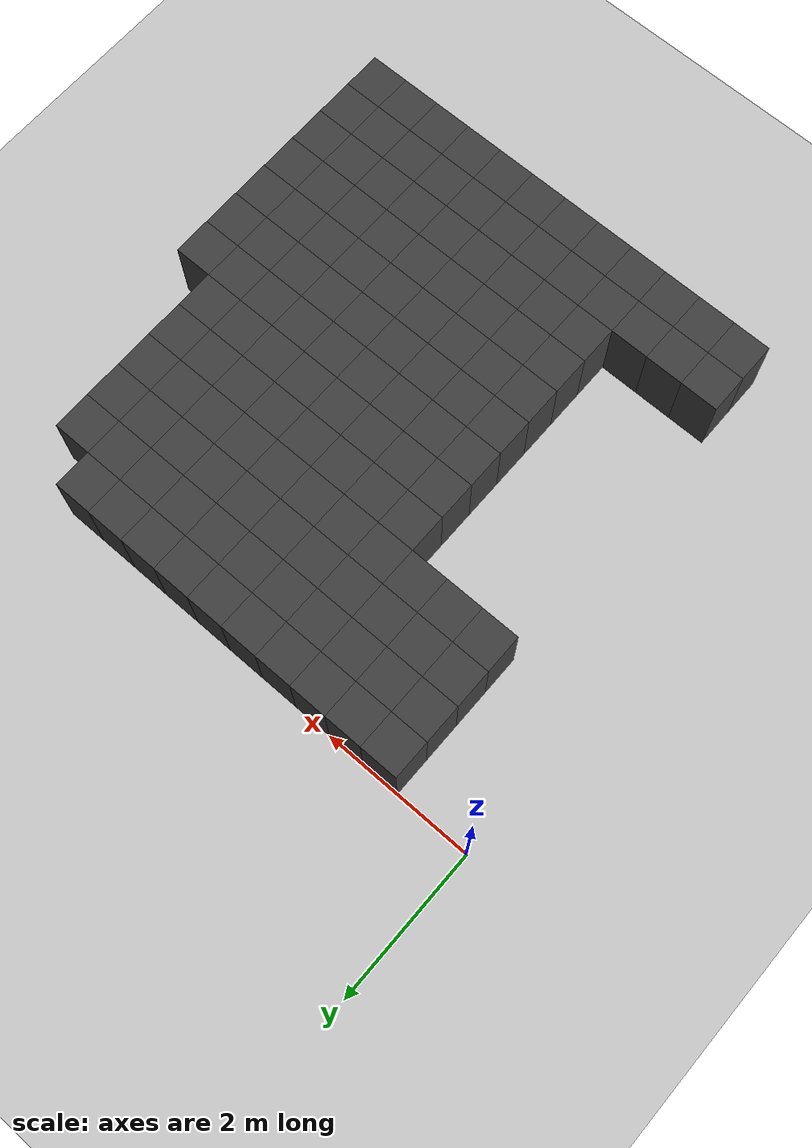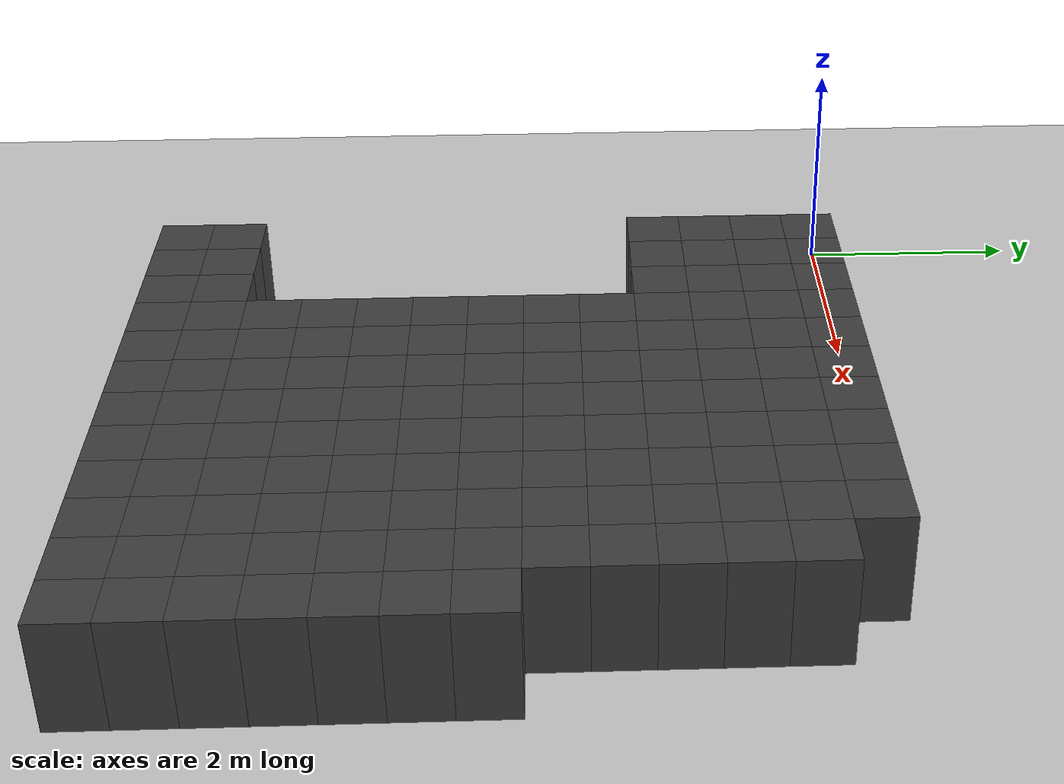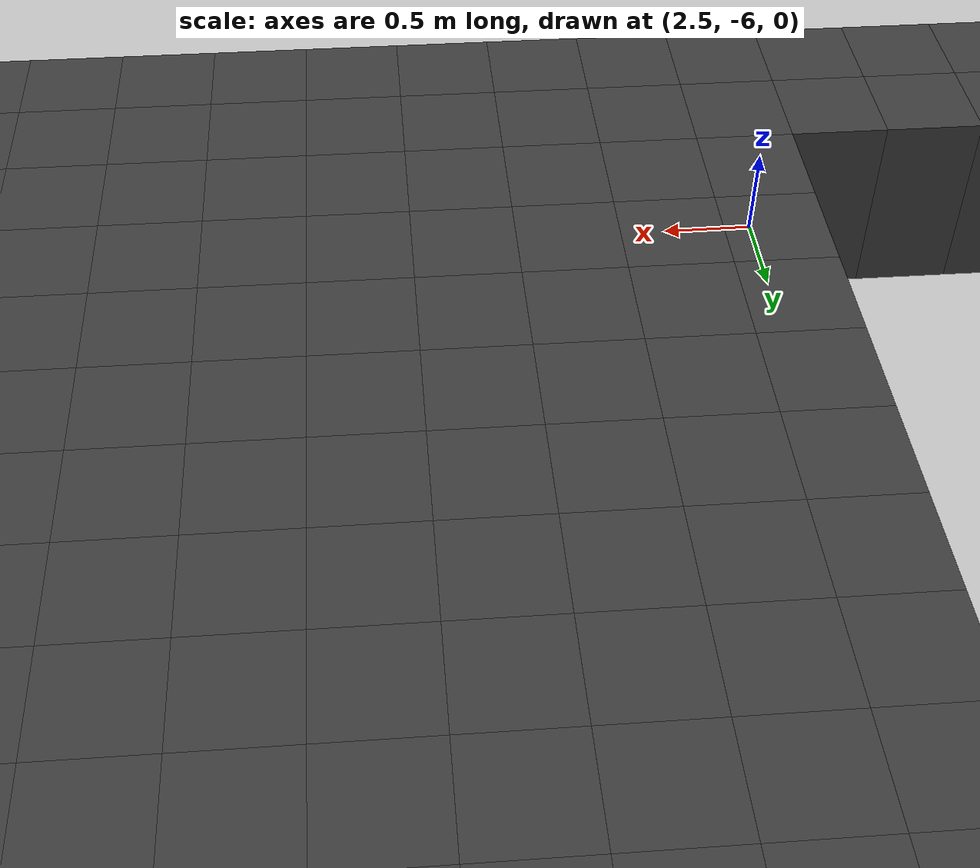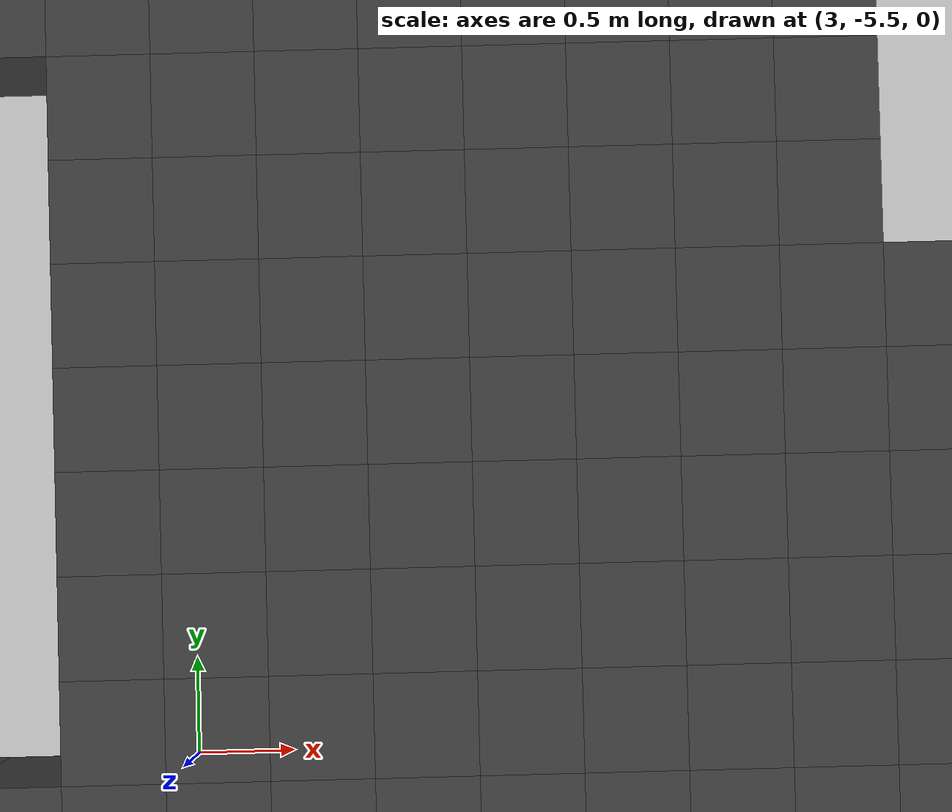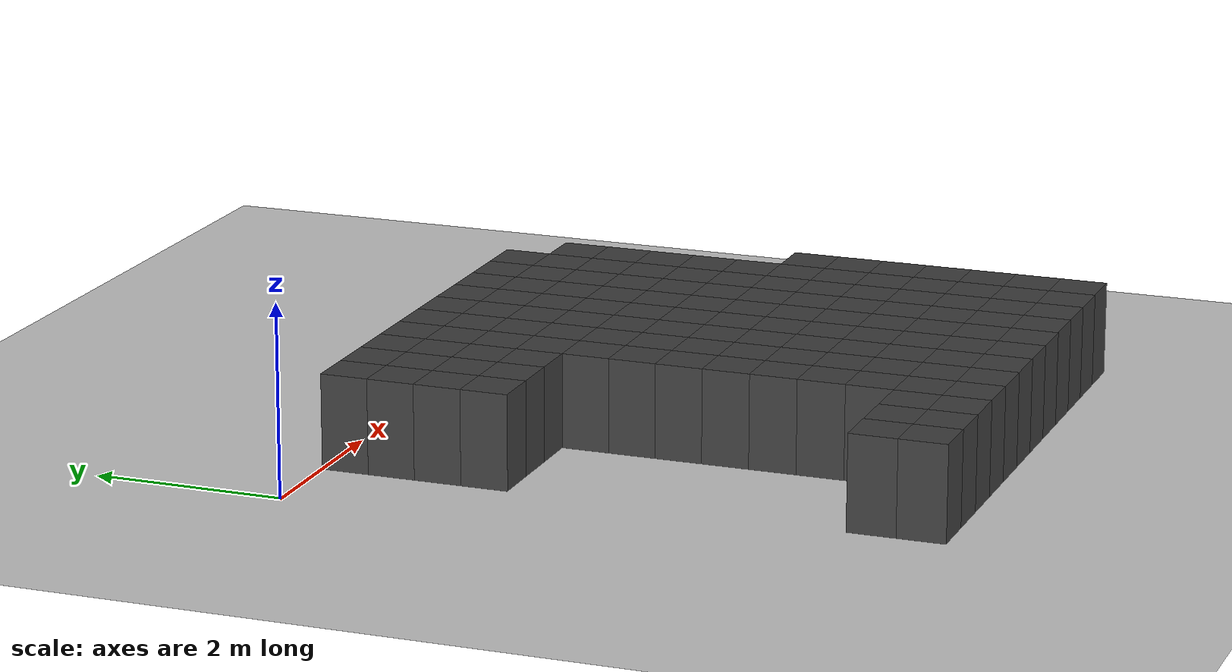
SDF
<sdf version="1.7">
 <world name="map_12356">
  <model name="ground_plane">
   <static>true</static>
   <link name="link">
    <collision name="collision">
     <geometry><plane><normal>0 0 1</normal><size>200 200</size></plane></geometry>
    </collision>
    <visual name="visual">
     <geometry><plane><normal>0 0 1</normal><size>200 200</size></plane></geometry>
     <material><ambient>0.8 0.8 0.8 1</ambient><diffuse>0.8 0.8 0.8 1</diffuse></material>
    </visual>
   </link>
  </model>
  <model name="maze_environment">
   <static>true</static>
   <link name="wall_991">
    <pose>1.250 -0.250 0.500 0 0 0</pose>
    <collision name="col"><geometry><box><size>0.5 0.5 1.0</size></box></geometry></collision>
    <visual name="vis">
     <geometry><box><size>0.5 0.5 1.0</size></box></geometry>
     <material><ambient>0.15 0.15 0.15 1</ambient><diffuse>0.25 0.25 0.25 1</diffuse></material>
    </visual>
   </link>
   <link name="wall_992">
    <pose>1.750 -0.250 0.500 0 0 0</pose>
    <collision name="col"><geometry><box><size>0.5 0.5 1.0</size></box></geometry></collision>
    <visual name="vis">
     <geometry><box><size>0.5 0.5 1.0</size></box></geometry>
     <material><ambient>0.15 0.15 0.15 1</ambient><diffuse>0.25 0.25 0.25 1</diffuse></material>
    </visual>
   </link>
   <link name="wall_993">
    <pose>2.250 -0.250 0.500 0 0 0</pose>
    <collision name="col"><geometry><box><size>0.5 0.5 1.0</size></box></geometry></collision>
    <visual name="vis">
     <geometry><box><size>0.5 0.5 1.0</size></box></geometry>
     <material><ambient>0.15 0.15 0.15 1</ambient><diffuse>0.25 0.25 0.25 1</diffuse></material>
    </visual>
   </link>
   <link name="wall_994">
    <pose>2.750 -0.250 0.500 0 0 0</pose>
    <collision name="col"><geometry><box><size>0.5 0.5 1.0</size></box></geometry></collision>
    <visual name="vis">
     <geometry><box><size>0.5 0.5 1.0</size></box></geometry>
     <material><ambient>0.15 0.15 0.15 1</ambient><diffuse>0.25 0.25 0.25 1</diffuse></material>
    </visual>
   </link>
   <link name="wall_995">
    <pose>3.250 -0.250 0.500 0 0 0</pose>
    <collision name="col"><geometry><box><size>0.5 0.5 1.0</size></box></geometry></collision>
    <visual name="vis">
     <geometry><box><size>0.5 0.5 1.0</size></box></geometry>
     <material><ambient>0.15 0.15 0.15 1</ambient><diffuse>0.25 0.25 0.25 1</diffuse></material>
    </visual>
   </link>
   <link name="wall_996">
    <pose>3.750 -0.250 0.500 0 0 0</pose>
    <collision name="col"><geometry><box><size>0.5 0.5 1.0</size></box></geometry></collision>
    <visual name="vis">
     <geometry><box><size>0.5 0.5 1.0</size></box></geometry>
     <material><ambient>0.15 0.15 0.15 1</ambient><diffuse>0.25 0.25 0.25 1</diffuse></material>
    </visual>
   </link>
   <link name="wall_997">
    <pose>4.250 -0.250 0.500 0 0 0</pose>
    <collision name="col"><geometry><box><size>0.5 0.5 1.0</size></box></geometry></collision>
    <visual name="vis">
     <geometry><box><size>0.5 0.5 1.0</size></box></geometry>
     <material><ambient>0.15 0.15 0.15 1</ambient><diffuse>0.25 0.25 0.25 1</diffuse></material>
    </visual>
   </link>
   <link name="wall_998">
    <pose>4.750 -0.250 0.500 0 0 0</pose>
    <collision name="col"><geometry><box><size>0.5 0.5 1.0</size></box></geometry></collision>
    <visual name="vis">
     <geometry><box><size>0.5 0.5 1.0</size></box></geometry>
     <material><ambient>0.15 0.15 0.15 1</ambient><diffuse>0.25 0.25 0.25 1</diffuse></material>
    </visual>
   </link>
   <link name="wall_999">
    <pose>5.250 -0.250 0.500 0 0 0</pose>
    <collision name="col"><geometry><box><size>0.5 0.5 1.0</size></box></geometry></collision>
    <visual name="vis">
     <geometry><box><size>0.5 0.5 1.0</size></box></geometry>
     <material><ambient>0.15 0.15 0.15 1</ambient><diffuse>0.25 0.25 0.25 1</diffuse></material>
    </visual>
   </link>
   <link name="wall_1000">
    <pose>5.750 -0.250 0.500 0 0 0</pose>
    <collision name="col"><geometry><box><size>0.5 0.5 1.0</size></box></geometry></collision>
    <visual name="vis">
     <geometry><box><size>0.5 0.5 1.0</size></box></geometry>
     <material><ambient>0.15 0.15 0.15 1</ambient><diffuse>0.25 0.25 0.25 1</diffuse></material>
    </visual>
   </link>
   <link name="wall_1035">
    <pose>1.250 -0.750 0.500 0 0 0</pose>
    <collision name="col"><geometry><box><size>0.5 0.5 1.0</size></box></geometry></collision>
    <visual name="vis">
     <geometry><box><size>0.5 0.5 1.0</size></box></geometry>
     <material><ambient>0.15 0.15 0.15 1</ambient><diffuse>0.25 0.25 0.25 1</diffuse></material>
    </visual>
   </link>
   <link name="wall_1036">
    <pose>1.750 -0.750 0.500 0 0 0</pose>
    <collision name="col"><geometry><box><size>0.5 0.5 1.0</size></box></geometry></collision>
    <visual name="vis">
     <geometry><box><size>0.5 0.5 1.0</size></box></geometry>
     <material><ambient>0.15 0.15 0.15 1</ambient><diffuse>0.25 0.25 0.25 1</diffuse></material>
    </visual>
   </link>
   <link name="wall_1037">
    <pose>2.250 -0.750 0.500 0 0 0</pose>
    <collision name="col"><geometry><box><size>0.5 0.5 1.0</size></box></geometry></collision>
    <visual name="vis">
     <geometry><box><size>0.5 0.5 1.0</size></box></geometry>
     <material><ambient>0.15 0.15 0.15 1</ambient><diffuse>0.25 0.25 0.25 1</diffuse></material>
    </visual>
   </link>
   <link name="wall_1038">
    <pose>2.750 -0.750 0.500 0 0 0</pose>
    <collision name="col"><geometry><box><size>0.5 0.5 1.0</size></box></geometry></collision>
    <visual name="vis">
     <geometry><box><size>0.5 0.5 1.0</size></box></geometry>
     <material><ambient>0.15 0.15 0.15 1</ambient><diffuse>0.25 0.25 0.25 1</diffuse></material>
    </visual>
   </link>
   <link name="wall_1039">
    <pose>3.250 -0.750 0.500 0 0 0</pose>
    <collision name="col"><geometry><box><size>0.5 0.5 1.0</size></box></geometry></collision>
    <visual name="vis">
     <geometry><box><size>0.5 0.5 1.0</size></box></geometry>
     <material><ambient>0.15 0.15 0.15 1</ambient><diffuse>0.25 0.25 0.25 1</diffuse></material>
    </visual>
   </link>
   <link name="wall_1040">
    <pose>3.750 -0.750 0.500 0 0 0</pose>
    <collision name="col"><geometry><box><size>0.5 0.5 1.0</size></box></geometry></collision>
    <visual name="vis">
     <geometry><box><size>0.5 0.5 1.0</size></box></geometry>
     <material><ambient>0.15 0.15 0.15 1</ambient><diffuse>0.25 0.25 0.25 1</diffuse></material>
    </visual>
   </link>
   <link name="wall_1041">
    <pose>4.250 -0.750 0.500 0 0 0</pose>
    <collision name="col"><geometry><box><size>0.5 0.5 1.0</size></box></geometry></collision>
    <visual name="vis">
     <geometry><box><size>0.5 0.5 1.0</size></box></geometry>
     <material><ambient>0.15 0.15 0.15 1</ambient><diffuse>0.25 0.25 0.25 1</diffuse></material>
    </visual>
   </link>
   <link name="wall_1042">
    <pose>4.750 -0.750 0.500 0 0 0</pose>
    <collision name="col"><geometry><box><size>0.5 0.5 1.0</size></box></geometry></collision>
    <visual name="vis">
     <geometry><box><size>0.5 0.5 1.0</size></box></geometry>
     <material><ambient>0.15 0.15 0.15 1</ambient><diffuse>0.25 0.25 0.25 1</diffuse></material>
    </visual>
   </link>
   <link name="wall_1043">
    <pose>5.250 -0.750 0.500 0 0 0</pose>
    <collision name="col"><geometry><box><size>0.5 0.5 1.0</size></box></geometry></collision>
    <visual name="vis">
     <geometry><box><size>0.5 0.5 1.0</size></box></geometry>
     <material><ambient>0.15 0.15 0.15 1</ambient><diffuse>0.25 0.25 0.25 1</diffuse></material>
    </visual>
   </link>
   <link name="wall_1044">
    <pose>5.750 -0.750 0.500 0 0 0</pose>
    <collision name="col"><geometry><box><size>0.5 0.5 1.0</size></box></geometry></collision>
    <visual name="vis">
     <geometry><box><size>0.5 0.5 1.0</size></box></geometry>
     <material><ambient>0.15 0.15 0.15 1</ambient><diffuse>0.25 0.25 0.25 1</diffuse></material>
    </visual>
   </link>
   <link name="wall_1045">
    <pose>6.250 -0.750 0.500 0 0 0</pose>
    <collision name="col"><geometry><box><size>0.5 0.5 1.0</size></box></geometry></collision>
    <visual name="vis">
     <geometry><box><size>0.5 0.5 1.0</size></box></geometry>
     <material><ambient>0.15 0.15 0.15 1</ambient><diffuse>0.25 0.25 0.25 1</diffuse></material>
    </visual>
   </link>
   <link name="wall_1079">
    <pose>1.250 -1.250 0.500 0 0 0</pose>
    <collision name="col"><geometry><box><size>0.5 0.5 1.0</size></box></geometry></collision>
    <visual name="vis">
     <geometry><box><size>0.5 0.5 1.0</size></box></geometry>
     <material><ambient>0.15 0.15 0.15 1</ambient><diffuse>0.25 0.25 0.25 1</diffuse></material>
    </visual>
   </link>
   <link name="wall_1080">
    <pose>1.750 -1.250 0.500 0 0 0</pose>
    <collision name="col"><geometry><box><size>0.5 0.5 1.0</size></box></geometry></collision>
    <visual name="vis">
     <geometry><box><size>0.5 0.5 1.0</size></box></geometry>
     <material><ambient>0.15 0.15 0.15 1</ambient><diffuse>0.25 0.25 0.25 1</diffuse></material>
    </visual>
   </link>
   <link name="wall_1081">
    <pose>2.250 -1.250 0.500 0 0 0</pose>
    <collision name="col"><geometry><box><size>0.5 0.5 1.0</size></box></geometry></collision>
    <visual name="vis">
     <geometry><box><size>0.5 0.5 1.0</size></box></geometry>
     <material><ambient>0.15 0.15 0.15 1</ambient><diffuse>0.25 0.25 0.25 1</diffuse></material>
    </visual>
   </link>
   <link name="wall_1082">
    <pose>2.750 -1.250 0.500 0 0 0</pose>
    <collision name="col"><geometry><box><size>0.5 0.5 1.0</size></box></geometry></collision>
    <visual name="vis">
     <geometry><box><size>0.5 0.5 1.0</size></box></geometry>
     <material><ambient>0.15 0.15 0.15 1</ambient><diffuse>0.25 0.25 0.25 1</diffuse></material>
    </visual>
   </link>
   <link name="wall_1083">
    <pose>3.250 -1.250 0.500 0 0 0</pose>
    <collision name="col"><geometry><box><size>0.5 0.5 1.0</size></box></geometry></collision>
    <visual name="vis">
     <geometry><box><size>0.5 0.5 1.0</size></box></geometry>
     <material><ambient>0.15 0.15 0.15 1</ambient><diffuse>0.25 0.25 0.25 1</diffuse></material>
    </visual>
   </link>
   <link name="wall_1084">
    <pose>3.750 -1.250 0.500 0 0 0</pose>
    <collision name="col"><geometry><box><size>0.5 0.5 1.0</size></box></geometry></collision>
    <visual name="vis">
     <geometry><box><size>0.5 0.5 1.0</size></box></geometry>
     <material><ambient>0.15 0.15 0.15 1</ambient><diffuse>0.25 0.25 0.25 1</diffuse></material>
    </visual>
   </link>
   <link name="wall_1085">
    <pose>4.250 -1.250 0.500 0 0 0</pose>
    <collision name="col"><geometry><box><size>0.5 0.5 1.0</size></box></geometry></collision>
    <visual name="vis">
     <geometry><box><size>0.5 0.5 1.0</size></box></geometry>
     <material><ambient>0.15 0.15 0.15 1</ambient><diffuse>0.25 0.25 0.25 1</diffuse></material>
    </visual>
   </link>
   <link name="wall_1086">
    <pose>4.750 -1.250 0.500 0 0 0</pose>
    <collision name="col"><geometry><box><size>0.5 0.5 1.0</size></box></geometry></collision>
    <visual name="vis">
     <geometry><box><size>0.5 0.5 1.0</size></box></geometry>
     <material><ambient>0.15 0.15 0.15 1</ambient><diffuse>0.25 0.25 0.25 1</diffuse></material>
    </visual>
   </link>
   <link name="wall_1087">
    <pose>5.250 -1.250 0.500 0 0 0</pose>
    <collision name="col"><geometry><box><size>0.5 0.5 1.0</size></box></geometry></collision>
    <visual name="vis">
     <geometry><box><size>0.5 0.5 1.0</size></box></geometry>
     <material><ambient>0.15 0.15 0.15 1</ambient><diffuse>0.25 0.25 0.25 1</diffuse></material>
    </visual>
   </link>
   <link name="wall_1088">
    <pose>5.750 -1.250 0.500 0 0 0</pose>
    <collision name="col"><geometry><box><size>0.5 0.5 1.0</size></box></geometry></collision>
    <visual name="vis">
     <geometry><box><size>0.5 0.5 1.0</size></box></geometry>
     <material><ambient>0.15 0.15 0.15 1</ambient><diffuse>0.25 0.25 0.25 1</diffuse></material>
    </visual>
   </link>
   <link name="wall_1089">
    <pose>6.250 -1.250 0.500 0 0 0</pose>
    <collision name="col"><geometry><box><size>0.5 0.5 1.0</size></box></geometry></collision>
    <visual name="vis">
     <geometry><box><size>0.5 0.5 1.0</size></box></geometry>
     <material><ambient>0.15 0.15 0.15 1</ambient><diffuse>0.25 0.25 0.25 1</diffuse></material>
    </visual>
   </link>
   <link name="wall_1121">
    <pose>1.250 -1.750 0.500 0 0 0</pose>
    <collision name="col"><geometry><box><size>0.5 0.5 1.0</size></box></geometry></collision>
    <visual name="vis">
     <geometry><box><size>0.5 0.5 1.0</size></box></geometry>
     <material><ambient>0.15 0.15 0.15 1</ambient><diffuse>0.25 0.25 0.25 1</diffuse></material>
    </visual>
   </link>
   <link name="wall_1122">
    <pose>1.750 -1.750 0.500 0 0 0</pose>
    <collision name="col"><geometry><box><size>0.5 0.5 1.0</size></box></geometry></collision>
    <visual name="vis">
     <geometry><box><size>0.5 0.5 1.0</size></box></geometry>
     <material><ambient>0.15 0.15 0.15 1</ambient><diffuse>0.25 0.25 0.25 1</diffuse></material>
    </visual>
   </link>
   <link name="wall_1123">
    <pose>2.250 -1.750 0.500 0 0 0</pose>
    <collision name="col"><geometry><box><size>0.5 0.5 1.0</size></box></geometry></collision>
    <visual name="vis">
     <geometry><box><size>0.5 0.5 1.0</size></box></geometry>
     <material><ambient>0.15 0.15 0.15 1</ambient><diffuse>0.25 0.25 0.25 1</diffuse></material>
    </visual>
   </link>
   <link name="wall_1124">
    <pose>2.750 -1.750 0.500 0 0 0</pose>
    <collision name="col"><geometry><box><size>0.5 0.5 1.0</size></box></geometry></collision>
    <visual name="vis">
     <geometry><box><size>0.5 0.5 1.0</size></box></geometry>
     <material><ambient>0.15 0.15 0.15 1</ambient><diffuse>0.25 0.25 0.25 1</diffuse></material>
    </visual>
   </link>
   <link name="wall_1125">
    <pose>3.250 -1.750 0.500 0 0 0</pose>
    <collision name="col"><geometry><box><size>0.5 0.5 1.0</size></box></geometry></collision>
    <visual name="vis">
     <geometry><box><size>0.5 0.5 1.0</size></box></geometry>
     <material><ambient>0.15 0.15 0.15 1</ambient><diffuse>0.25 0.25 0.25 1</diffuse></material>
    </visual>
   </link>
   <link name="wall_1126">
    <pose>3.750 -1.750 0.500 0 0 0</pose>
    <collision name="col"><geometry><box><size>0.5 0.5 1.0</size></box></geometry></collision>
    <visual name="vis">
     <geometry><box><size>0.5 0.5 1.0</size></box></geometry>
     <material><ambient>0.15 0.15 0.15 1</ambient><diffuse>0.25 0.25 0.25 1</diffuse></material>
    </visual>
   </link>
   <link name="wall_1127">
    <pose>4.250 -1.750 0.500 0 0 0</pose>
    <collision name="col"><geometry><box><size>0.5 0.5 1.0</size></box></geometry></collision>
    <visual name="vis">
     <geometry><box><size>0.5 0.5 1.0</size></box></geometry>
     <material><ambient>0.15 0.15 0.15 1</ambient><diffuse>0.25 0.25 0.25 1</diffuse></material>
    </visual>
   </link>
   <link name="wall_1128">
    <pose>4.750 -1.750 0.500 0 0 0</pose>
    <collision name="col"><geometry><box><size>0.5 0.5 1.0</size></box></geometry></collision>
    <visual name="vis">
     <geometry><box><size>0.5 0.5 1.0</size></box></geometry>
     <material><ambient>0.15 0.15 0.15 1</ambient><diffuse>0.25 0.25 0.25 1</diffuse></material>
    </visual>
   </link>
   <link name="wall_1129">
    <pose>5.250 -1.750 0.500 0 0 0</pose>
    <collision name="col"><geometry><box><size>0.5 0.5 1.0</size></box></geometry></collision>
    <visual name="vis">
     <geometry><box><size>0.5 0.5 1.0</size></box></geometry>
     <material><ambient>0.15 0.15 0.15 1</ambient><diffuse>0.25 0.25 0.25 1</diffuse></material>
    </visual>
   </link>
   <link name="wall_1130">
    <pose>5.750 -1.750 0.500 0 0 0</pose>
    <collision name="col"><geometry><box><size>0.5 0.5 1.0</size></box></geometry></collision>
    <visual name="vis">
     <geometry><box><size>0.5 0.5 1.0</size></box></geometry>
     <material><ambient>0.15 0.15 0.15 1</ambient><diffuse>0.25 0.25 0.25 1</diffuse></material>
    </visual>
   </link>
   <link name="wall_1131">
    <pose>6.250 -1.750 0.500 0 0 0</pose>
    <collision name="col"><geometry><box><size>0.5 0.5 1.0</size></box></geometry></collision>
    <visual name="vis">
     <geometry><box><size>0.5 0.5 1.0</size></box></geometry>
     <material><ambient>0.15 0.15 0.15 1</ambient><diffuse>0.25 0.25 0.25 1</diffuse></material>
    </visual>
   </link>
   <link name="wall_1162">
    <pose>2.750 -2.250 0.500 0 0 0</pose>
    <collision name="col"><geometry><box><size>0.5 0.5 1.0</size></box></geometry></collision>
    <visual name="vis">
     <geometry><box><size>0.5 0.5 1.0</size></box></geometry>
     <material><ambient>0.15 0.15 0.15 1</ambient><diffuse>0.25 0.25 0.25 1</diffuse></material>
    </visual>
   </link>
   <link name="wall_1163">
    <pose>3.250 -2.250 0.500 0 0 0</pose>
    <collision name="col"><geometry><box><size>0.5 0.5 1.0</size></box></geometry></collision>
    <visual name="vis">
     <geometry><box><size>0.5 0.5 1.0</size></box></geometry>
     <material><ambient>0.15 0.15 0.15 1</ambient><diffuse>0.25 0.25 0.25 1</diffuse></material>
    </visual>
   </link>
   <link name="wall_1164">
    <pose>3.750 -2.250 0.500 0 0 0</pose>
    <collision name="col"><geometry><box><size>0.5 0.5 1.0</size></box></geometry></collision>
    <visual name="vis">
     <geometry><box><size>0.5 0.5 1.0</size></box></geometry>
     <material><ambient>0.15 0.15 0.15 1</ambient><diffuse>0.25 0.25 0.25 1</diffuse></material>
    </visual>
   </link>
   <link name="wall_1165">
    <pose>4.250 -2.250 0.500 0 0 0</pose>
    <collision name="col"><geometry><box><size>0.5 0.5 1.0</size></box></geometry></collision>
    <visual name="vis">
     <geometry><box><size>0.5 0.5 1.0</size></box></geometry>
     <material><ambient>0.15 0.15 0.15 1</ambient><diffuse>0.25 0.25 0.25 1</diffuse></material>
    </visual>
   </link>
   <link name="wall_1166">
    <pose>4.750 -2.250 0.500 0 0 0</pose>
    <collision name="col"><geometry><box><size>0.5 0.5 1.0</size></box></geometry></collision>
    <visual name="vis">
     <geometry><box><size>0.5 0.5 1.0</size></box></geometry>
     <material><ambient>0.15 0.15 0.15 1</ambient><diffuse>0.25 0.25 0.25 1</diffuse></material>
    </visual>
   </link>
   <link name="wall_1167">
    <pose>5.250 -2.250 0.500 0 0 0</pose>
    <collision name="col"><geometry><box><size>0.5 0.5 1.0</size></box></geometry></collision>
    <visual name="vis">
     <geometry><box><size>0.5 0.5 1.0</size></box></geometry>
     <material><ambient>0.15 0.15 0.15 1</ambient><diffuse>0.25 0.25 0.25 1</diffuse></material>
    </visual>
   </link>
   <link name="wall_1168">
    <pose>5.750 -2.250 0.500 0 0 0</pose>
    <collision name="col"><geometry><box><size>0.5 0.5 1.0</size></box></geometry></collision>
    <visual name="vis">
     <geometry><box><size>0.5 0.5 1.0</size></box></geometry>
     <material><ambient>0.15 0.15 0.15 1</ambient><diffuse>0.25 0.25 0.25 1</diffuse></material>
    </visual>
   </link>
   <link name="wall_1169">
    <pose>6.250 -2.250 0.500 0 0 0</pose>
    <collision name="col"><geometry><box><size>0.5 0.5 1.0</size></box></geometry></collision>
    <visual name="vis">
     <geometry><box><size>0.5 0.5 1.0</size></box></geometry>
     <material><ambient>0.15 0.15 0.15 1</ambient><diffuse>0.25 0.25 0.25 1</diffuse></material>
    </visual>
   </link>
   <link name="wall_1203">
    <pose>2.750 -2.750 0.500 0 0 0</pose>
    <collision name="col"><geometry><box><size>0.5 0.5 1.0</size></box></geometry></collision>
    <visual name="vis">
     <geometry><box><size>0.5 0.5 1.0</size></box></geometry>
     <material><ambient>0.15 0.15 0.15 1</ambient><diffuse>0.25 0.25 0.25 1</diffuse></material>
    </visual>
   </link>
   <link name="wall_1204">
    <pose>3.250 -2.750 0.500 0 0 0</pose>
    <collision name="col"><geometry><box><size>0.5 0.5 1.0</size></box></geometry></collision>
    <visual name="vis">
     <geometry><box><size>0.5 0.5 1.0</size></box></geometry>
     <material><ambient>0.15 0.15 0.15 1</ambient><diffuse>0.25 0.25 0.25 1</diffuse></material>
    </visual>
   </link>
   <link name="wall_1205">
    <pose>3.750 -2.750 0.500 0 0 0</pose>
    <collision name="col"><geometry><box><size>0.5 0.5 1.0</size></box></geometry></collision>
    <visual name="vis">
     <geometry><box><size>0.5 0.5 1.0</size></box></geometry>
     <material><ambient>0.15 0.15 0.15 1</ambient><diffuse>0.25 0.25 0.25 1</diffuse></material>
    </visual>
   </link>
   <link name="wall_1206">
    <pose>4.250 -2.750 0.500 0 0 0</pose>
    <collision name="col"><geometry><box><size>0.5 0.5 1.0</size></box></geometry></collision>
    <visual name="vis">
     <geometry><box><size>0.5 0.5 1.0</size></box></geometry>
     <material><ambient>0.15 0.15 0.15 1</ambient><diffuse>0.25 0.25 0.25 1</diffuse></material>
    </visual>
   </link>
   <link name="wall_1207">
    <pose>4.750 -2.750 0.500 0 0 0</pose>
    <collision name="col"><geometry><box><size>0.5 0.5 1.0</size></box></geometry></collision>
    <visual name="vis">
     <geometry><box><size>0.5 0.5 1.0</size></box></geometry>
     <material><ambient>0.15 0.15 0.15 1</ambient><diffuse>0.25 0.25 0.25 1</diffuse></material>
    </visual>
   </link>
   <link name="wall_1208">
    <pose>5.250 -2.750 0.500 0 0 0</pose>
    <collision name="col"><geometry><box><size>0.5 0.5 1.0</size></box></geometry></collision>
    <visual name="vis">
     <geometry><box><size>0.5 0.5 1.0</size></box></geometry>
     <material><ambient>0.15 0.15 0.15 1</ambient><diffuse>0.25 0.25 0.25 1</diffuse></material>
    </visual>
   </link>
   <link name="wall_1209">
    <pose>5.750 -2.750 0.500 0 0 0</pose>
    <collision name="col"><geometry><box><size>0.5 0.5 1.0</size></box></geometry></collision>
    <visual name="vis">
     <geometry><box><size>0.5 0.5 1.0</size></box></geometry>
     <material><ambient>0.15 0.15 0.15 1</ambient><diffuse>0.25 0.25 0.25 1</diffuse></material>
    </visual>
   </link>
   <link name="wall_1210">
    <pose>6.250 -2.750 0.500 0 0 0</pose>
    <collision name="col"><geometry><box><size>0.5 0.5 1.0</size></box></geometry></collision>
    <visual name="vis">
     <geometry><box><size>0.5 0.5 1.0</size></box></geometry>
     <material><ambient>0.15 0.15 0.15 1</ambient><diffuse>0.25 0.25 0.25 1</diffuse></material>
    </visual>
   </link>
   <link name="wall_1244">
    <pose>2.750 -3.250 0.500 0 0 0</pose>
    <collision name="col"><geometry><box><size>0.5 0.5 1.0</size></box></geometry></collision>
    <visual name="vis">
     <geometry><box><size>0.5 0.5 1.0</size></box></geometry>
     <material><ambient>0.15 0.15 0.15 1</ambient><diffuse>0.25 0.25 0.25 1</diffuse></material>
    </visual>
   </link>
   <link name="wall_1245">
    <pose>3.250 -3.250 0.500 0 0 0</pose>
    <collision name="col"><geometry><box><size>0.5 0.5 1.0</size></box></geometry></collision>
    <visual name="vis">
     <geometry><box><size>0.5 0.5 1.0</size></box></geometry>
     <material><ambient>0.15 0.15 0.15 1</ambient><diffuse>0.25 0.25 0.25 1</diffuse></material>
    </visual>
   </link>
   <link name="wall_1246">
    <pose>3.750 -3.250 0.500 0 0 0</pose>
    <collision name="col"><geometry><box><size>0.5 0.5 1.0</size></box></geometry></collision>
    <visual name="vis">
     <geometry><box><size>0.5 0.5 1.0</size></box></geometry>
     <material><ambient>0.15 0.15 0.15 1</ambient><diffuse>0.25 0.25 0.25 1</diffuse></material>
    </visual>
   </link>
   <link name="wall_1247">
    <pose>4.250 -3.250 0.500 0 0 0</pose>
    <collision name="col"><geometry><box><size>0.5 0.5 1.0</size></box></geometry></collision>
    <visual name="vis">
     <geometry><box><size>0.5 0.5 1.0</size></box></geometry>
     <material><ambient>0.15 0.15 0.15 1</ambient><diffuse>0.25 0.25 0.25 1</diffuse></material>
    </visual>
   </link>
   <link name="wall_1248">
    <pose>4.750 -3.250 0.500 0 0 0</pose>
    <collision name="col"><geometry><box><size>0.5 0.5 1.0</size></box></geometry></collision>
    <visual name="vis">
     <geometry><box><size>0.5 0.5 1.0</size></box></geometry>
     <material><ambient>0.15 0.15 0.15 1</ambient><diffuse>0.25 0.25 0.25 1</diffuse></material>
    </visual>
   </link>
   <link name="wall_1249">
    <pose>5.250 -3.250 0.500 0 0 0</pose>
    <collision name="col"><geometry><box><size>0.5 0.5 1.0</size></box></geometry></collision>
    <visual name="vis">
     <geometry><box><size>0.5 0.5 1.0</size></box></geometry>
     <material><ambient>0.15 0.15 0.15 1</ambient><diffuse>0.25 0.25 0.25 1</diffuse></material>
    </visual>
   </link>
   <link name="wall_1250">
    <pose>5.750 -3.250 0.500 0 0 0</pose>
    <collision name="col"><geometry><box><size>0.5 0.5 1.0</size></box></geometry></collision>
    <visual name="vis">
     <geometry><box><size>0.5 0.5 1.0</size></box></geometry>
     <material><ambient>0.15 0.15 0.15 1</ambient><diffuse>0.25 0.25 0.25 1</diffuse></material>
    </visual>
   </link>
   <link name="wall_1251">
    <pose>6.250 -3.250 0.500 0 0 0</pose>
    <collision name="col"><geometry><box><size>0.5 0.5 1.0</size></box></geometry></collision>
    <visual name="vis">
     <geometry><box><size>0.5 0.5 1.0</size></box></geometry>
     <material><ambient>0.15 0.15 0.15 1</ambient><diffuse>0.25 0.25 0.25 1</diffuse></material>
    </visual>
   </link>
   <link name="wall_1252">
    <pose>6.750 -3.250 0.500 0 0 0</pose>
    <collision name="col"><geometry><box><size>0.5 0.5 1.0</size></box></geometry></collision>
    <visual name="vis">
     <geometry><box><size>0.5 0.5 1.0</size></box></geometry>
     <material><ambient>0.15 0.15 0.15 1</ambient><diffuse>0.25 0.25 0.25 1</diffuse></material>
    </visual>
   </link>
   <link name="wall_1280">
    <pose>2.750 -3.750 0.500 0 0 0</pose>
    <collision name="col"><geometry><box><size>0.5 0.5 1.0</size></box></geometry></collision>
    <visual name="vis">
     <geometry><box><size>0.5 0.5 1.0</size></box></geometry>
     <material><ambient>0.15 0.15 0.15 1</ambient><diffuse>0.25 0.25 0.25 1</diffuse></material>
    </visual>
   </link>
   <link name="wall_1281">
    <pose>3.250 -3.750 0.500 0 0 0</pose>
    <collision name="col"><geometry><box><size>0.5 0.5 1.0</size></box></geometry></collision>
    <visual name="vis">
     <geometry><box><size>0.5 0.5 1.0</size></box></geometry>
     <material><ambient>0.15 0.15 0.15 1</ambient><diffuse>0.25 0.25 0.25 1</diffuse></material>
    </visual>
   </link>
   <link name="wall_1282">
    <pose>3.750 -3.750 0.500 0 0 0</pose>
    <collision name="col"><geometry><box><size>0.5 0.5 1.0</size></box></geometry></collision>
    <visual name="vis">
     <geometry><box><size>0.5 0.5 1.0</size></box></geometry>
     <material><ambient>0.15 0.15 0.15 1</ambient><diffuse>0.25 0.25 0.25 1</diffuse></material>
    </visual>
   </link>
   <link name="wall_1283">
    <pose>4.250 -3.750 0.500 0 0 0</pose>
    <collision name="col"><geometry><box><size>0.5 0.5 1.0</size></box></geometry></collision>
    <visual name="vis">
     <geometry><box><size>0.5 0.5 1.0</size></box></geometry>
     <material><ambient>0.15 0.15 0.15 1</ambient><diffuse>0.25 0.25 0.25 1</diffuse></material>
    </visual>
   </link>
   <link name="wall_1284">
    <pose>4.750 -3.750 0.500 0 0 0</pose>
    <collision name="col"><geometry><box><size>0.5 0.5 1.0</size></box></geometry></collision>
    <visual name="vis">
     <geometry><box><size>0.5 0.5 1.0</size></box></geometry>
     <material><ambient>0.15 0.15 0.15 1</ambient><diffuse>0.25 0.25 0.25 1</diffuse></material>
    </visual>
   </link>
   <link name="wall_1285">
    <pose>5.250 -3.750 0.500 0 0 0</pose>
    <collision name="col"><geometry><box><size>0.5 0.5 1.0</size></box></geometry></collision>
    <visual name="vis">
     <geometry><box><size>0.5 0.5 1.0</size></box></geometry>
     <material><ambient>0.15 0.15 0.15 1</ambient><diffuse>0.25 0.25 0.25 1</diffuse></material>
    </visual>
   </link>
   <link name="wall_1286">
    <pose>5.750 -3.750 0.500 0 0 0</pose>
    <collision name="col"><geometry><box><size>0.5 0.5 1.0</size></box></geometry></collision>
    <visual name="vis">
     <geometry><box><size>0.5 0.5 1.0</size></box></geometry>
     <material><ambient>0.15 0.15 0.15 1</ambient><diffuse>0.25 0.25 0.25 1</diffuse></material>
    </visual>
   </link>
   <link name="wall_1287">
    <pose>6.250 -3.750 0.500 0 0 0</pose>
    <collision name="col"><geometry><box><size>0.5 0.5 1.0</size></box></geometry></collision>
    <visual name="vis">
     <geometry><box><size>0.5 0.5 1.0</size></box></geometry>
     <material><ambient>0.15 0.15 0.15 1</ambient><diffuse>0.25 0.25 0.25 1</diffuse></material>
    </visual>
   </link>
   <link name="wall_1288">
    <pose>6.750 -3.750 0.500 0 0 0</pose>
    <collision name="col"><geometry><box><size>0.5 0.5 1.0</size></box></geometry></collision>
    <visual name="vis">
     <geometry><box><size>0.5 0.5 1.0</size></box></geometry>
     <material><ambient>0.15 0.15 0.15 1</ambient><diffuse>0.25 0.25 0.25 1</diffuse></material>
    </visual>
   </link>
   <link name="wall_1320">
    <pose>2.750 -4.250 0.500 0 0 0</pose>
    <collision name="col"><geometry><box><size>0.5 0.5 1.0</size></box></geometry></collision>
    <visual name="vis">
     <geometry><box><size>0.5 0.5 1.0</size></box></geometry>
     <material><ambient>0.15 0.15 0.15 1</ambient><diffuse>0.25 0.25 0.25 1</diffuse></material>
    </visual>
   </link>
   <link name="wall_1321">
    <pose>3.250 -4.250 0.500 0 0 0</pose>
    <collision name="col"><geometry><box><size>0.5 0.5 1.0</size></box></geometry></collision>
    <visual name="vis">
     <geometry><box><size>0.5 0.5 1.0</size></box></geometry>
     <material><ambient>0.15 0.15 0.15 1</ambient><diffuse>0.25 0.25 0.25 1</diffuse></material>
    </visual>
   </link>
   <link name="wall_1322">
    <pose>3.750 -4.250 0.500 0 0 0</pose>
    <collision name="col"><geometry><box><size>0.5 0.5 1.0</size></box></geometry></collision>
    <visual name="vis">
     <geometry><box><size>0.5 0.5 1.0</size></box></geometry>
     <material><ambient>0.15 0.15 0.15 1</ambient><diffuse>0.25 0.25 0.25 1</diffuse></material>
    </visual>
   </link>
   <link name="wall_1323">
    <pose>4.250 -4.250 0.500 0 0 0</pose>
    <collision name="col"><geometry><box><size>0.5 0.5 1.0</size></box></geometry></collision>
    <visual name="vis">
     <geometry><box><size>0.5 0.5 1.0</size></box></geometry>
     <material><ambient>0.15 0.15 0.15 1</ambient><diffuse>0.25 0.25 0.25 1</diffuse></material>
    </visual>
   </link>
   <link name="wall_1324">
    <pose>4.750 -4.250 0.500 0 0 0</pose>
    <collision name="col"><geometry><box><size>0.5 0.5 1.0</size></box></geometry></collision>
    <visual name="vis">
     <geometry><box><size>0.5 0.5 1.0</size></box></geometry>
     <material><ambient>0.15 0.15 0.15 1</ambient><diffuse>0.25 0.25 0.25 1</diffuse></material>
    </visual>
   </link>
   <link name="wall_1325">
    <pose>5.250 -4.250 0.500 0 0 0</pose>
    <collision name="col"><geometry><box><size>0.5 0.5 1.0</size></box></geometry></collision>
    <visual name="vis">
     <geometry><box><size>0.5 0.5 1.0</size></box></geometry>
     <material><ambient>0.15 0.15 0.15 1</ambient><diffuse>0.25 0.25 0.25 1</diffuse></material>
    </visual>
   </link>
   <link name="wall_1326">
    <pose>5.750 -4.250 0.500 0 0 0</pose>
    <collision name="col"><geometry><box><size>0.5 0.5 1.0</size></box></geometry></collision>
    <visual name="vis">
     <geometry><box><size>0.5 0.5 1.0</size></box></geometry>
     <material><ambient>0.15 0.15 0.15 1</ambient><diffuse>0.25 0.25 0.25 1</diffuse></material>
    </visual>
   </link>
   <link name="wall_1327">
    <pose>6.250 -4.250 0.500 0 0 0</pose>
    <collision name="col"><geometry><box><size>0.5 0.5 1.0</size></box></geometry></collision>
    <visual name="vis">
     <geometry><box><size>0.5 0.5 1.0</size></box></geometry>
     <material><ambient>0.15 0.15 0.15 1</ambient><diffuse>0.25 0.25 0.25 1</diffuse></material>
    </visual>
   </link>
   <link name="wall_1328">
    <pose>6.750 -4.250 0.500 0 0 0</pose>
    <collision name="col"><geometry><box><size>0.5 0.5 1.0</size></box></geometry></collision>
    <visual name="vis">
     <geometry><box><size>0.5 0.5 1.0</size></box></geometry>
     <material><ambient>0.15 0.15 0.15 1</ambient><diffuse>0.25 0.25 0.25 1</diffuse></material>
    </visual>
   </link>
   <link name="wall_1353">
    <pose>2.750 -4.750 0.500 0 0 0</pose>
    <collision name="col"><geometry><box><size>0.5 0.5 1.0</size></box></geometry></collision>
    <visual name="vis">
     <geometry><box><size>0.5 0.5 1.0</size></box></geometry>
     <material><ambient>0.15 0.15 0.15 1</ambient><diffuse>0.25 0.25 0.25 1</diffuse></material>
    </visual>
   </link>
   <link name="wall_1354">
    <pose>3.250 -4.750 0.500 0 0 0</pose>
    <collision name="col"><geometry><box><size>0.5 0.5 1.0</size></box></geometry></collision>
    <visual name="vis">
     <geometry><box><size>0.5 0.5 1.0</size></box></geometry>
     <material><ambient>0.15 0.15 0.15 1</ambient><diffuse>0.25 0.25 0.25 1</diffuse></material>
    </visual>
   </link>
   <link name="wall_1355">
    <pose>3.750 -4.750 0.500 0 0 0</pose>
    <collision name="col"><geometry><box><size>0.5 0.5 1.0</size></box></geometry></collision>
    <visual name="vis">
     <geometry><box><size>0.5 0.5 1.0</size></box></geometry>
     <material><ambient>0.15 0.15 0.15 1</ambient><diffuse>0.25 0.25 0.25 1</diffuse></material>
    </visual>
   </link>
   <link name="wall_1356">
    <pose>4.250 -4.750 0.500 0 0 0</pose>
    <collision name="col"><geometry><box><size>0.5 0.5 1.0</size></box></geometry></collision>
    <visual name="vis">
     <geometry><box><size>0.5 0.5 1.0</size></box></geometry>
     <material><ambient>0.15 0.15 0.15 1</ambient><diffuse>0.25 0.25 0.25 1</diffuse></material>
    </visual>
   </link>
   <link name="wall_1357">
    <pose>4.750 -4.750 0.500 0 0 0</pose>
    <collision name="col"><geometry><box><size>0.5 0.5 1.0</size></box></geometry></collision>
    <visual name="vis">
     <geometry><box><size>0.5 0.5 1.0</size></box></geometry>
     <material><ambient>0.15 0.15 0.15 1</ambient><diffuse>0.25 0.25 0.25 1</diffuse></material>
    </visual>
   </link>
   <link name="wall_1358">
    <pose>5.250 -4.750 0.500 0 0 0</pose>
    <collision name="col"><geometry><box><size>0.5 0.5 1.0</size></box></geometry></collision>
    <visual name="vis">
     <geometry><box><size>0.5 0.5 1.0</size></box></geometry>
     <material><ambient>0.15 0.15 0.15 1</ambient><diffuse>0.25 0.25 0.25 1</diffuse></material>
    </visual>
   </link>
   <link name="wall_1359">
    <pose>5.750 -4.750 0.500 0 0 0</pose>
    <collision name="col"><geometry><box><size>0.5 0.5 1.0</size></box></geometry></collision>
    <visual name="vis">
     <geometry><box><size>0.5 0.5 1.0</size></box></geometry>
     <material><ambient>0.15 0.15 0.15 1</ambient><diffuse>0.25 0.25 0.25 1</diffuse></material>
    </visual>
   </link>
   <link name="wall_1360">
    <pose>6.250 -4.750 0.500 0 0 0</pose>
    <collision name="col"><geometry><box><size>0.5 0.5 1.0</size></box></geometry></collision>
    <visual name="vis">
     <geometry><box><size>0.5 0.5 1.0</size></box></geometry>
     <material><ambient>0.15 0.15 0.15 1</ambient><diffuse>0.25 0.25 0.25 1</diffuse></material>
    </visual>
   </link>
   <link name="wall_1361">
    <pose>6.750 -4.750 0.500 0 0 0</pose>
    <collision name="col"><geometry><box><size>0.5 0.5 1.0</size></box></geometry></collision>
    <visual name="vis">
     <geometry><box><size>0.5 0.5 1.0</size></box></geometry>
     <material><ambient>0.15 0.15 0.15 1</ambient><diffuse>0.25 0.25 0.25 1</diffuse></material>
    </visual>
   </link>
   <link name="wall_1386">
    <pose>2.750 -5.250 0.500 0 0 0</pose>
    <collision name="col"><geometry><box><size>0.5 0.5 1.0</size></box></geometry></collision>
    <visual name="vis">
     <geometry><box><size>0.5 0.5 1.0</size></box></geometry>
     <material><ambient>0.15 0.15 0.15 1</ambient><diffuse>0.25 0.25 0.25 1</diffuse></material>
    </visual>
   </link>
   <link name="wall_1387">
    <pose>3.250 -5.250 0.500 0 0 0</pose>
    <collision name="col"><geometry><box><size>0.5 0.5 1.0</size></box></geometry></collision>
    <visual name="vis">
     <geometry><box><size>0.5 0.5 1.0</size></box></geometry>
     <material><ambient>0.15 0.15 0.15 1</ambient><diffuse>0.25 0.25 0.25 1</diffuse></material>
    </visual>
   </link>
   <link name="wall_1388">
    <pose>3.750 -5.250 0.500 0 0 0</pose>
    <collision name="col"><geometry><box><size>0.5 0.5 1.0</size></box></geometry></collision>
    <visual name="vis">
     <geometry><box><size>0.5 0.5 1.0</size></box></geometry>
     <material><ambient>0.15 0.15 0.15 1</ambient><diffuse>0.25 0.25 0.25 1</diffuse></material>
    </visual>
   </link>
   <link name="wall_1389">
    <pose>4.250 -5.250 0.500 0 0 0</pose>
    <collision name="col"><geometry><box><size>0.5 0.5 1.0</size></box></geometry></collision>
    <visual name="vis">
     <geometry><box><size>0.5 0.5 1.0</size></box></geometry>
     <material><ambient>0.15 0.15 0.15 1</ambient><diffuse>0.25 0.25 0.25 1</diffuse></material>
    </visual>
   </link>
   <link name="wall_1390">
    <pose>4.750 -5.250 0.500 0 0 0</pose>
    <collision name="col"><geometry><box><size>0.5 0.5 1.0</size></box></geometry></collision>
    <visual name="vis">
     <geometry><box><size>0.5 0.5 1.0</size></box></geometry>
     <material><ambient>0.15 0.15 0.15 1</ambient><diffuse>0.25 0.25 0.25 1</diffuse></material>
    </visual>
   </link>
   <link name="wall_1391">
    <pose>5.250 -5.250 0.500 0 0 0</pose>
    <collision name="col"><geometry><box><size>0.5 0.5 1.0</size></box></geometry></collision>
    <visual name="vis">
     <geometry><box><size>0.5 0.5 1.0</size></box></geometry>
     <material><ambient>0.15 0.15 0.15 1</ambient><diffuse>0.25 0.25 0.25 1</diffuse></material>
    </visual>
   </link>
   <link name="wall_1392">
    <pose>5.750 -5.250 0.500 0 0 0</pose>
    <collision name="col"><geometry><box><size>0.5 0.5 1.0</size></box></geometry></collision>
    <visual name="vis">
     <geometry><box><size>0.5 0.5 1.0</size></box></geometry>
     <material><ambient>0.15 0.15 0.15 1</ambient><diffuse>0.25 0.25 0.25 1</diffuse></material>
    </visual>
   </link>
   <link name="wall_1393">
    <pose>6.250 -5.250 0.500 0 0 0</pose>
    <collision name="col"><geometry><box><size>0.5 0.5 1.0</size></box></geometry></collision>
    <visual name="vis">
     <geometry><box><size>0.5 0.5 1.0</size></box></geometry>
     <material><ambient>0.15 0.15 0.15 1</ambient><diffuse>0.25 0.25 0.25 1</diffuse></material>
    </visual>
   </link>
   <link name="wall_1394">
    <pose>6.750 -5.250 0.500 0 0 0</pose>
    <collision name="col"><geometry><box><size>0.5 0.5 1.0</size></box></geometry></collision>
    <visual name="vis">
     <geometry><box><size>0.5 0.5 1.0</size></box></geometry>
     <material><ambient>0.15 0.15 0.15 1</ambient><diffuse>0.25 0.25 0.25 1</diffuse></material>
    </visual>
   </link>
   <link name="wall_1423">
    <pose>1.250 -5.750 0.500 0 0 0</pose>
    <collision name="col"><geometry><box><size>0.5 0.5 1.0</size></box></geometry></collision>
    <visual name="vis">
     <geometry><box><size>0.5 0.5 1.0</size></box></geometry>
     <material><ambient>0.15 0.15 0.15 1</ambient><diffuse>0.25 0.25 0.25 1</diffuse></material>
    </visual>
   </link>
   <link name="wall_1424">
    <pose>1.750 -5.750 0.500 0 0 0</pose>
    <collision name="col"><geometry><box><size>0.5 0.5 1.0</size></box></geometry></collision>
    <visual name="vis">
     <geometry><box><size>0.5 0.5 1.0</size></box></geometry>
     <material><ambient>0.15 0.15 0.15 1</ambient><diffuse>0.25 0.25 0.25 1</diffuse></material>
    </visual>
   </link>
   <link name="wall_1425">
    <pose>2.250 -5.750 0.500 0 0 0</pose>
    <collision name="col"><geometry><box><size>0.5 0.5 1.0</size></box></geometry></collision>
    <visual name="vis">
     <geometry><box><size>0.5 0.5 1.0</size></box></geometry>
     <material><ambient>0.15 0.15 0.15 1</ambient><diffuse>0.25 0.25 0.25 1</diffuse></material>
    </visual>
   </link>
   <link name="wall_1426">
    <pose>2.750 -5.750 0.500 0 0 0</pose>
    <collision name="col"><geometry><box><size>0.5 0.5 1.0</size></box></geometry></collision>
    <visual name="vis">
     <geometry><box><size>0.5 0.5 1.0</size></box></geometry>
     <material><ambient>0.15 0.15 0.15 1</ambient><diffuse>0.25 0.25 0.25 1</diffuse></material>
    </visual>
   </link>
   <link name="wall_1427">
    <pose>3.250 -5.750 0.500 0 0 0</pose>
    <collision name="col"><geometry><box><size>0.5 0.5 1.0</size></box></geometry></collision>
    <visual name="vis">
     <geometry><box><size>0.5 0.5 1.0</size></box></geometry>
     <material><ambient>0.15 0.15 0.15 1</ambient><diffuse>0.25 0.25 0.25 1</diffuse></material>
    </visual>
   </link>
   <link name="wall_1428">
    <pose>3.750 -5.750 0.500 0 0 0</pose>
    <collision name="col"><geometry><box><size>0.5 0.5 1.0</size></box></geometry></collision>
    <visual name="vis">
     <geometry><box><size>0.5 0.5 1.0</size></box></geometry>
     <material><ambient>0.15 0.15 0.15 1</ambient><diffuse>0.25 0.25 0.25 1</diffuse></material>
    </visual>
   </link>
   <link name="wall_1429">
    <pose>4.250 -5.750 0.500 0 0 0</pose>
    <collision name="col"><geometry><box><size>0.5 0.5 1.0</size></box></geometry></collision>
    <visual name="vis">
     <geometry><box><size>0.5 0.5 1.0</size></box></geometry>
     <material><ambient>0.15 0.15 0.15 1</ambient><diffuse>0.25 0.25 0.25 1</diffuse></material>
    </visual>
   </link>
   <link name="wall_1430">
    <pose>4.750 -5.750 0.500 0 0 0</pose>
    <collision name="col"><geometry><box><size>0.5 0.5 1.0</size></box></geometry></collision>
    <visual name="vis">
     <geometry><box><size>0.5 0.5 1.0</size></box></geometry>
     <material><ambient>0.15 0.15 0.15 1</ambient><diffuse>0.25 0.25 0.25 1</diffuse></material>
    </visual>
   </link>
   <link name="wall_1431">
    <pose>5.250 -5.750 0.500 0 0 0</pose>
    <collision name="col"><geometry><box><size>0.5 0.5 1.0</size></box></geometry></collision>
    <visual name="vis">
     <geometry><box><size>0.5 0.5 1.0</size></box></geometry>
     <material><ambient>0.15 0.15 0.15 1</ambient><diffuse>0.25 0.25 0.25 1</diffuse></material>
    </visual>
   </link>
   <link name="wall_1432">
    <pose>5.750 -5.750 0.500 0 0 0</pose>
    <collision name="col"><geometry><box><size>0.5 0.5 1.0</size></box></geometry></collision>
    <visual name="vis">
     <geometry><box><size>0.5 0.5 1.0</size></box></geometry>
     <material><ambient>0.15 0.15 0.15 1</ambient><diffuse>0.25 0.25 0.25 1</diffuse></material>
    </visual>
   </link>
   <link name="wall_1433">
    <pose>6.250 -5.750 0.500 0 0 0</pose>
    <collision name="col"><geometry><box><size>0.5 0.5 1.0</size></box></geometry></collision>
    <visual name="vis">
     <geometry><box><size>0.5 0.5 1.0</size></box></geometry>
     <material><ambient>0.15 0.15 0.15 1</ambient><diffuse>0.25 0.25 0.25 1</diffuse></material>
    </visual>
   </link>
   <link name="wall_1434">
    <pose>6.750 -5.750 0.500 0 0 0</pose>
    <collision name="col"><geometry><box><size>0.5 0.5 1.0</size></box></geometry></collision>
    <visual name="vis">
     <geometry><box><size>0.5 0.5 1.0</size></box></geometry>
     <material><ambient>0.15 0.15 0.15 1</ambient><diffuse>0.25 0.25 0.25 1</diffuse></material>
    </visual>
   </link>
   <link name="wall_1459">
    <pose>1.250 -6.250 0.500 0 0 0</pose>
    <collision name="col"><geometry><box><size>0.5 0.5 1.0</size></box></geometry></collision>
    <visual name="vis">
     <geometry><box><size>0.5 0.5 1.0</size></box></geometry>
     <material><ambient>0.15 0.15 0.15 1</ambient><diffuse>0.25 0.25 0.25 1</diffuse></material>
    </visual>
   </link>
   <link name="wall_1460">
    <pose>1.750 -6.250 0.500 0 0 0</pose>
    <collision name="col"><geometry><box><size>0.5 0.5 1.0</size></box></geometry></collision>
    <visual name="vis">
     <geometry><box><size>0.5 0.5 1.0</size></box></geometry>
     <material><ambient>0.15 0.15 0.15 1</ambient><diffuse>0.25 0.25 0.25 1</diffuse></material>
    </visual>
   </link>
   <link name="wall_1461">
    <pose>2.250 -6.250 0.500 0 0 0</pose>
    <collision name="col"><geometry><box><size>0.5 0.5 1.0</size></box></geometry></collision>
    <visual name="vis">
     <geometry><box><size>0.5 0.5 1.0</size></box></geometry>
     <material><ambient>0.15 0.15 0.15 1</ambient><diffuse>0.25 0.25 0.25 1</diffuse></material>
    </visual>
   </link>
   <link name="wall_1462">
    <pose>2.750 -6.250 0.500 0 0 0</pose>
    <collision name="col"><geometry><box><size>0.5 0.5 1.0</size></box></geometry></collision>
    <visual name="vis">
     <geometry><box><size>0.5 0.5 1.0</size></box></geometry>
     <material><ambient>0.15 0.15 0.15 1</ambient><diffuse>0.25 0.25 0.25 1</diffuse></material>
    </visual>
   </link>
   <link name="wall_1463">
    <pose>3.250 -6.250 0.500 0 0 0</pose>
    <collision name="col"><geometry><box><size>0.5 0.5 1.0</size></box></geometry></collision>
    <visual name="vis">
     <geometry><box><size>0.5 0.5 1.0</size></box></geometry>
     <material><ambient>0.15 0.15 0.15 1</ambient><diffuse>0.25 0.25 0.25 1</diffuse></material>
    </visual>
   </link>
   <link name="wall_1464">
    <pose>3.750 -6.250 0.500 0 0 0</pose>
    <collision name="col"><geometry><box><size>0.5 0.5 1.0</size></box></geometry></collision>
    <visual name="vis">
     <geometry><box><size>0.5 0.5 1.0</size></box></geometry>
     <material><ambient>0.15 0.15 0.15 1</ambient><diffuse>0.25 0.25 0.25 1</diffuse></material>
    </visual>
   </link>
   <link name="wall_1465">
    <pose>4.250 -6.250 0.500 0 0 0</pose>
    <collision name="col"><geometry><box><size>0.5 0.5 1.0</size></box></geometry></collision>
    <visual name="vis">
     <geometry><box><size>0.5 0.5 1.0</size></box></geometry>
     <material><ambient>0.15 0.15 0.15 1</ambient><diffuse>0.25 0.25 0.25 1</diffuse></material>
    </visual>
   </link>
   <link name="wall_1466">
    <pose>4.750 -6.250 0.500 0 0 0</pose>
    <collision name="col"><geometry><box><size>0.5 0.5 1.0</size></box></geometry></collision>
    <visual name="vis">
     <geometry><box><size>0.5 0.5 1.0</size></box></geometry>
     <material><ambient>0.15 0.15 0.15 1</ambient><diffuse>0.25 0.25 0.25 1</diffuse></material>
    </visual>
   </link>
   <link name="wall_1467">
    <pose>5.250 -6.250 0.500 0 0 0</pose>
    <collision name="col"><geometry><box><size>0.5 0.5 1.0</size></box></geometry></collision>
    <visual name="vis">
     <geometry><box><size>0.5 0.5 1.0</size></box></geometry>
     <material><ambient>0.15 0.15 0.15 1</ambient><diffuse>0.25 0.25 0.25 1</diffuse></material>
    </visual>
   </link>
   <link name="wall_1468">
    <pose>5.750 -6.250 0.500 0 0 0</pose>
    <collision name="col"><geometry><box><size>0.5 0.5 1.0</size></box></geometry></collision>
    <visual name="vis">
     <geometry><box><size>0.5 0.5 1.0</size></box></geometry>
     <material><ambient>0.15 0.15 0.15 1</ambient><diffuse>0.25 0.25 0.25 1</diffuse></material>
    </visual>
   </link>
   <link name="wall_1469">
    <pose>6.250 -6.250 0.500 0 0 0</pose>
    <collision name="col"><geometry><box><size>0.5 0.5 1.0</size></box></geometry></collision>
    <visual name="vis">
     <geometry><box><size>0.5 0.5 1.0</size></box></geometry>
     <material><ambient>0.15 0.15 0.15 1</ambient><diffuse>0.25 0.25 0.25 1</diffuse></material>
    </visual>
   </link>
   <link name="wall_1470">
    <pose>6.750 -6.250 0.500 0 0 0</pose>
    <collision name="col"><geometry><box><size>0.5 0.5 1.0</size></box></geometry></collision>
    <visual name="vis">
     <geometry><box><size>0.5 0.5 1.0</size></box></geometry>
     <material><ambient>0.15 0.15 0.15 1</ambient><diffuse>0.25 0.25 0.25 1</diffuse></material>
    </visual>
   </link>
  </model>
 </world>
</sdf>
